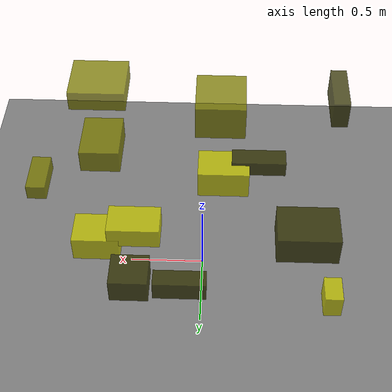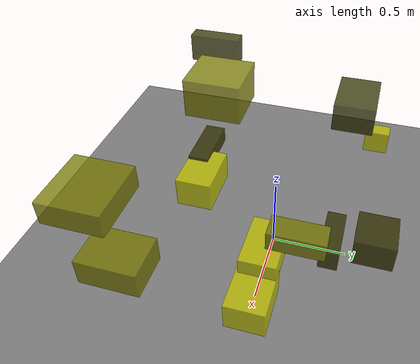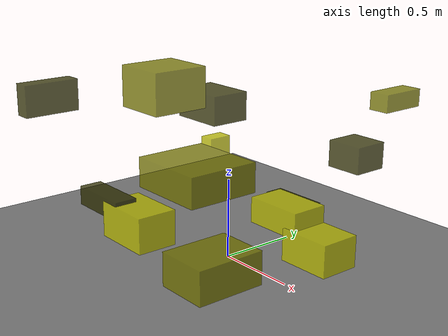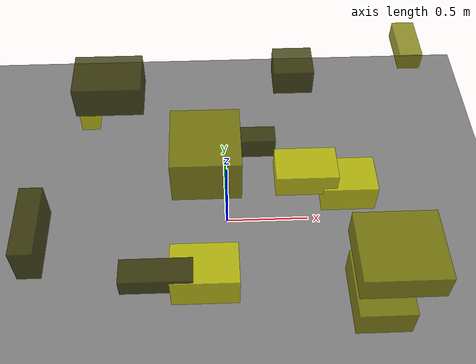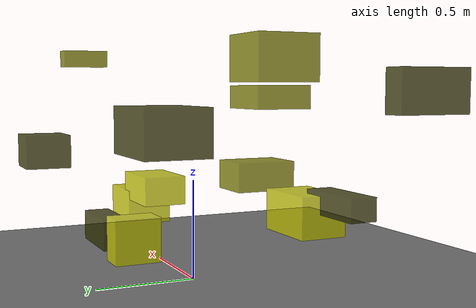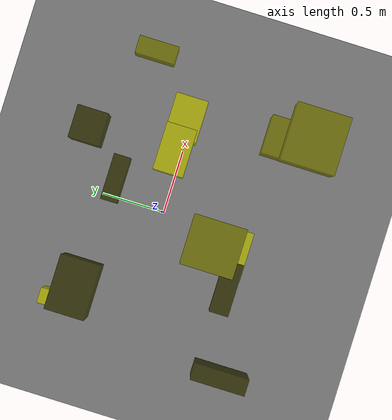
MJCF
<?xml version="1.0"?>
<mujoco model="obstacle_scene">
  <compiler angle="radian" coordinate="local"/>
  <option timestep="0.001" gravity="0 0 -9.81"/>

  <asset>
    <material name="obstacle_mat" rgba="0.8 0.8 0.0 0.8"/>
    <material name="ground_mat" rgba="0.5 0.5 0.5 1"/>
  </asset>

  <worldbody>
    <!-- Ground plane -->
    <geom name="ground" type="plane" size="3 3 0.1" material="ground_mat"/>

    <!-- Obstacles -->
    <body name="obstacle_0" pos="0.135741 0.409548 0.263911">
      <geom name="obs_0" type="box" size="0.176029 0.061117 0.071813" rgba="0.2 0.2 0.0 0.8"/>
    </body>
    <body name="obstacle_1" pos="0.950490 0.301007 1.127201">
      <geom name="obs_1" type="box" size="0.055604 0.125815 0.046090" rgba="0.5 0.5 0.0 0.8"/>
    </body>
    <body name="obstacle_2" pos="-0.136473 -0.564168 0.321705">
      <geom name="obs_2" type="box" size="0.184148 0.124068 0.106780" rgba="0.8 0.8 0.0 0.8"/>
    </body>
    <body name="obstacle_3" pos="-0.650591 0.401634 0.788869">
      <geom name="obs_3" type="box" size="0.188900 0.137571 0.097694" rgba="0.2 0.2 0.0 0.8"/>
    </body>
    <body name="obstacle_4" pos="0.762787 -0.749256 0.411244">
      <geom name="obs_4" type="box" size="0.144192 0.190723 0.089873" rgba="0.5 0.5 0.0 0.8"/>
    </body>
    <body name="obstacle_5" pos="0.457456 0.043261 0.411345">
      <geom name="obs_5" type="box" size="0.176797 0.112143 0.075873" rgba="0.8 0.8 0.0 0.8"/>
    </body>
    <body name="obstacle_6" pos="-0.389343 -0.611897 0.393581">
      <geom name="obs_6" type="box" size="0.194715 0.070859 0.057806" rgba="0.2 0.2 0.0 0.8"/>
    </body>
    <body name="obstacle_7" pos="-0.106862 -0.393823 1.106879">
      <geom name="obs_7" type="box" size="0.160586 0.169334 0.119047" rgba="0.5 0.5 0.0 0.8"/>
    </body>
    <body name="obstacle_8" pos="-0.830774 0.578726 0.410219">
      <geom name="obs_8" type="box" size="0.054941 0.085505 0.082604" rgba="0.8 0.8 0.0 0.8"/>
    </body>
    <body name="obstacle_9" pos="0.418370 0.648639 0.639722">
      <geom name="obs_9" type="box" size="0.116410 0.109650 0.082199" rgba="0.2 0.2 0.0 0.8"/>
    </body>
    <body name="obstacle_10" pos="0.751995 -0.835149 0.901565">
      <geom name="obs_10" type="box" size="0.196789 0.182147 0.072746" rgba="0.5 0.5 0.0 0.8"/>
    </body>
    <body name="obstacle_11" pos="0.714929 0.037949 0.290703">
      <geom name="obs_11" type="box" size="0.158518 0.120945 0.093512" rgba="0.8 0.8 0.0 0.8"/>
    </body>
    <body name="obstacle_12" pos="-0.909962 -0.692513 0.945864">
      <geom name="obs_12" type="box" size="0.053960 0.179846 0.099325" rgba="0.2 0.2 0.0 0.8"/>
    </body>
  </worldbody>
</mujoco>
